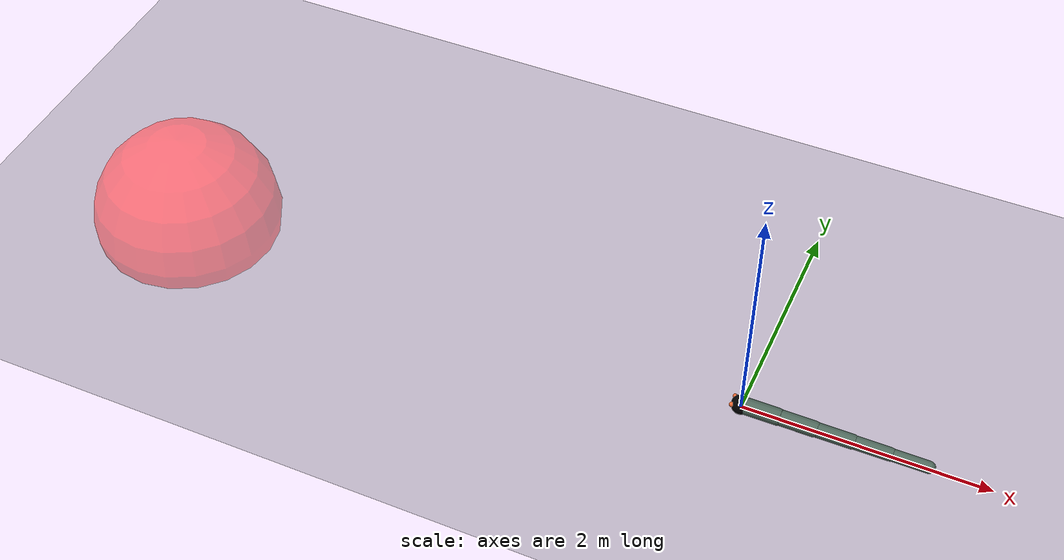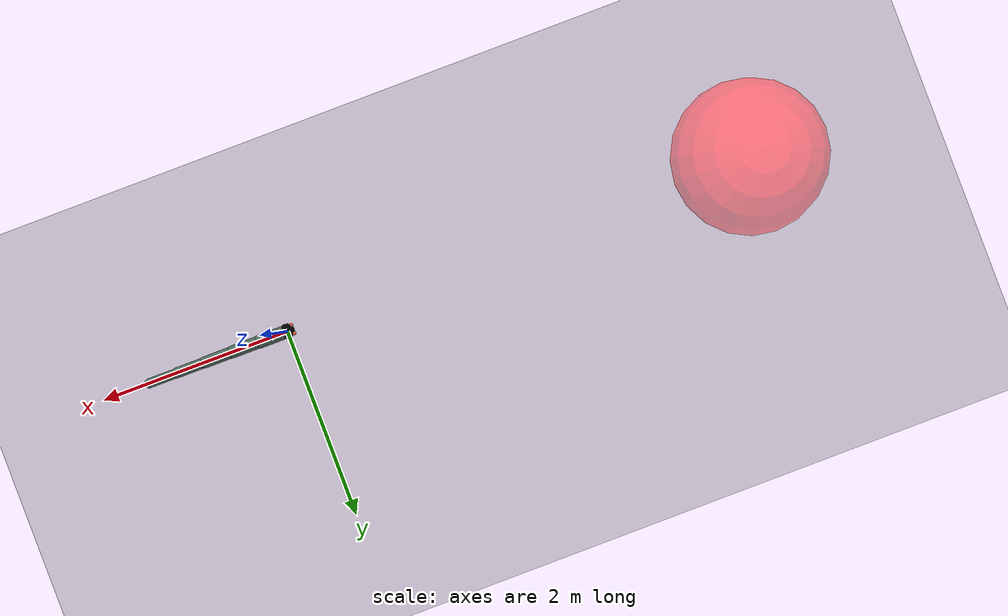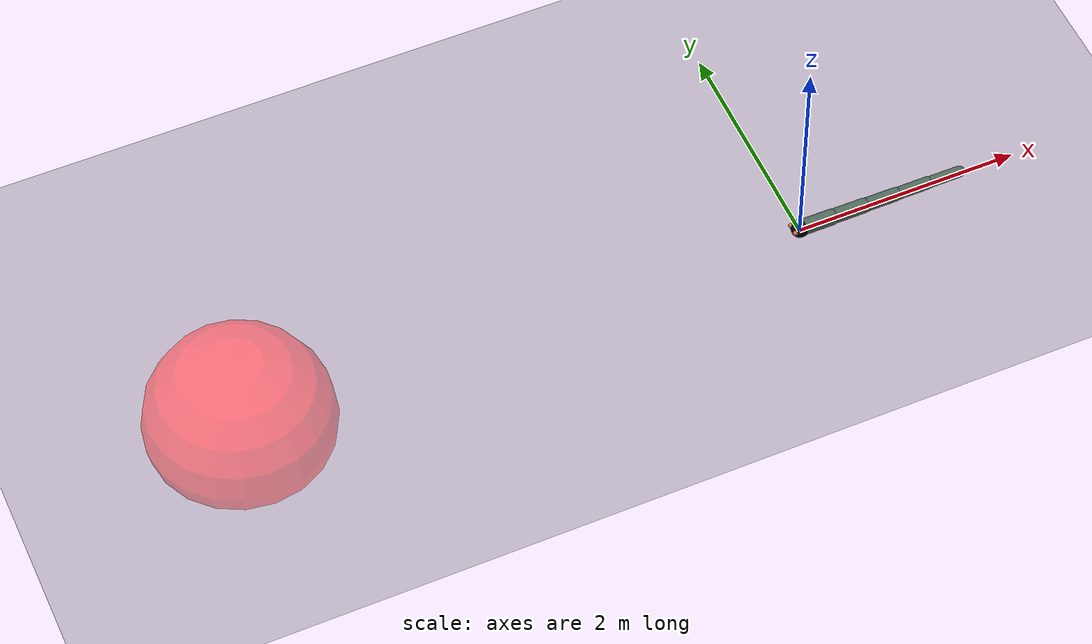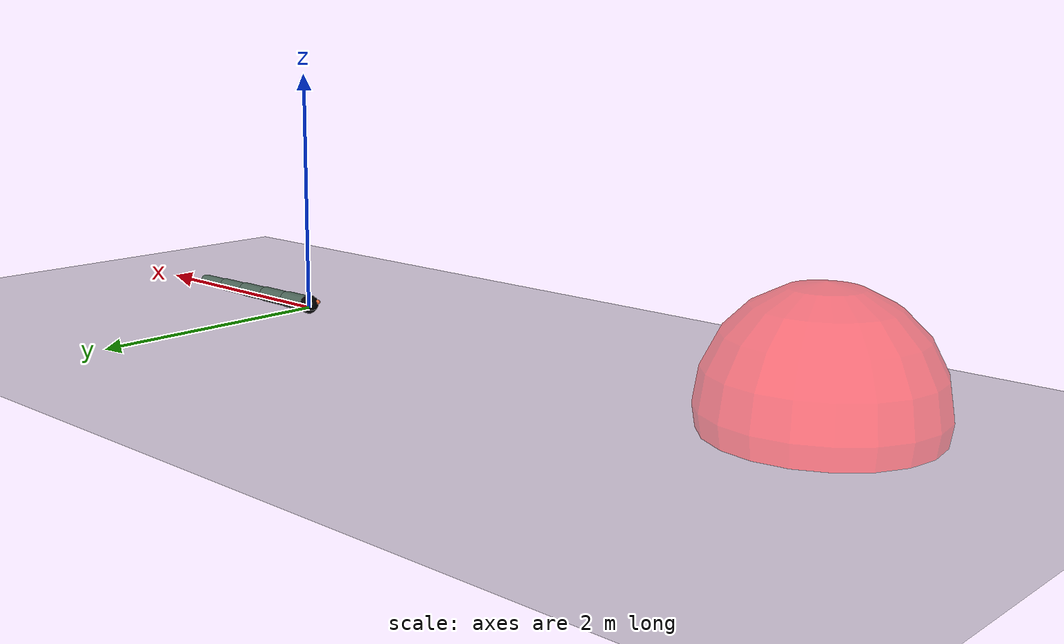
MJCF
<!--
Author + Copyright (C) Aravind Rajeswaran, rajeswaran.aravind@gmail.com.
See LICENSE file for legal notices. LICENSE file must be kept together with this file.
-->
<mujoco model="swimmer">
	<compiler inertiafromgeom="true" angle="radian" />
	<default>
		<joint limited="true" range="-1.5 1.5"/>
        <!--Default value from http://mujoco.org/book/modeling.html -->
		<geom friction="1 0.005 0.0001"/>
		<motor ctrllimited="true" ctrlrange="-1 1"/>
		<default class="body">
			<geom material="MatBody"/>
		</default>
	</default>

	<!--Viscosity:: water:0.000894, air:0.00001983 -->
	<!--Density:: water:1000, air:1.2 -->
	<option timestep="0.005" viscosity="0.000894" density="1000" />

	<asset>
        <texture type="skybox" builtin="gradient" rgb1=".1 .12 .15" rgb2="0 0 0" width="100" height="100"/>
        <texture builtin="checker" height="100" name="groundplane" rgb1=".4 .4 .45" rgb2=".15 .15 0.15" type="2d" width="100"/>
		<material name="MatBody" specular="3" shininess="0.9" reflectance="0" rgba=".3 .4 .35 1"/>
		<material name="MatGnd" texture="groundplane" texrepeat="10 10" specular="1" shininess="1" reflectance="0.00001"/>
	</asset>

	<worldbody>
		<light directional="true" cutoff="100" exponent="1" diffuse="1 1 1" specular=".1 .1 .1" pos="0 0 1.3" dir="-0 0 -1.3"/>
		<camera name="cam0" pos="0 -7 7" euler="0.7 0 0"/>
		<geom name="ground" material="MatGnd" type="plane" pos="0 0 0" size="10 10 1" contype="0" conaffinity="0" />
		<body pos="0 0 0.03" childclass="body" name="torso">
			<site name="eyeL" type="sphere" size="0.02" pos="-.065 -.045 .02" rgba=".9 .4 .2 1"/>
			<site name="eyer" type="sphere" size="0.02" pos="-.065 0.045 .02" rgba=".9 .4 .2 1"/>
			<site name="head" material="MatBody" type="sphere" size="0.08" pos="0 0 0" rgba="0 0 0 1"/>
			<joint type="slide" pos="0 0 0" axis="1 0 0" limited="false"/>
			<joint type="slide" pos="0 0 0" axis="0 1 0" limited="false"/>
			<joint type="hinge" pos="0 0 0" axis="0 0 1" limited="false"/>
			<geom type="capsule" pos="0.15 0 0" quat="0.707 0 -0.707 0" size="0.07 0.15" />
			<body pos="0.3 0 0" name="body1">
				<joint name="j1" type="hinge" pos="0 0 0" axis="0 0 1"/>
				<geom type="capsule" pos="0.15 0 0" quat="0.707 0 -0.707 0" size="0.065 0.15" />
				<body pos="0.3 0 0" name="body2">
					<joint name="j2" type="hinge" pos="0 0 0" axis="0 0 1"/>
					<geom type="capsule" pos="0.15 0 0" quat="0.707 0 -0.707 0" size="0.06 0.15" />
					<body pos="0.3 0 0" name="body3">
						<joint name="j3" type="hinge" pos="0 0 0" axis="0 0 1"/>
						<geom type="capsule" pos="0.15 0 0" quat="0.707 0 -0.707 0" size="0.055 0.15" />
						<body pos="0.3 0 0" name="body4">
							<joint name="j4" type="hinge" pos="0 0 0" axis="0 0 1"/>
							<geom type="capsule" pos="0.15 0 0" quat="0.707 0 -0.707 0" size="0.05 0.15" />
						</body>
					</body>
				</body>
			</body>
		</body>

	    <site name="target" pos='-5 0 0.15' type="sphere" size="0.8" rgba="1 0 0 0.5" />

	</worldbody>

	<actuator>
		<motor joint="j1" gear="20"/>
		<motor joint="j2" gear="20"/>
		<motor joint="j3" gear="20"/>
		<motor joint="j4" gear="20"/>
	</actuator>

</mujoco>
